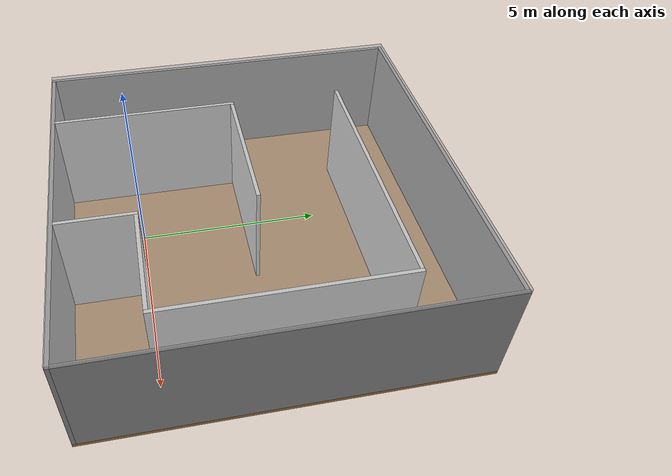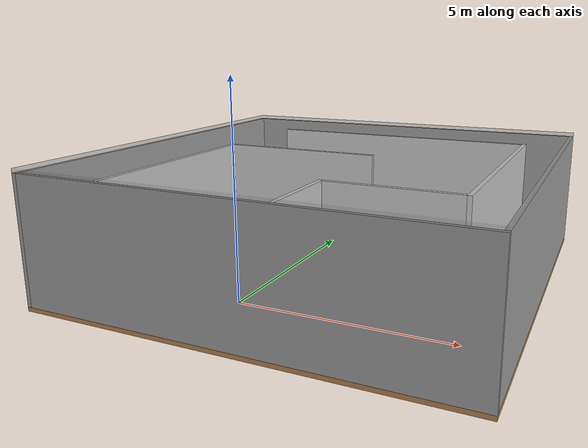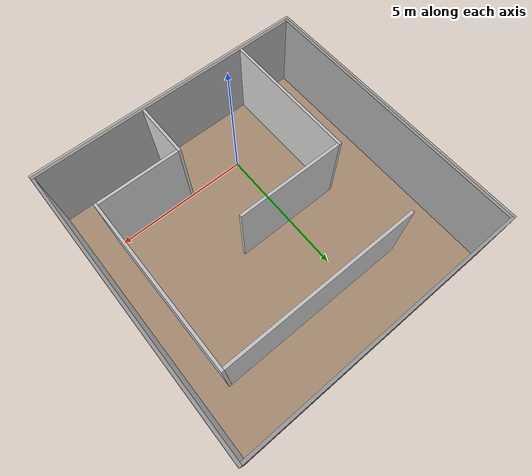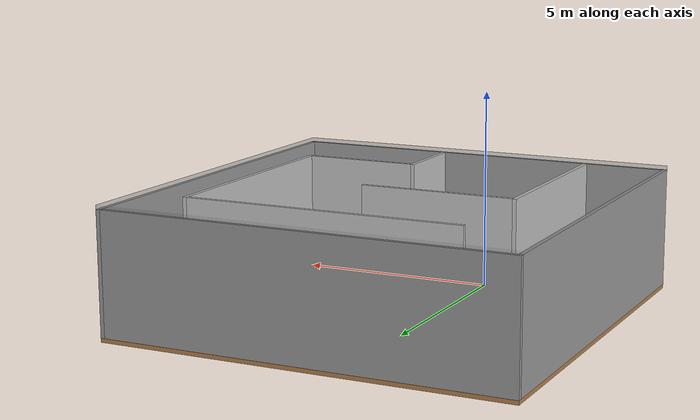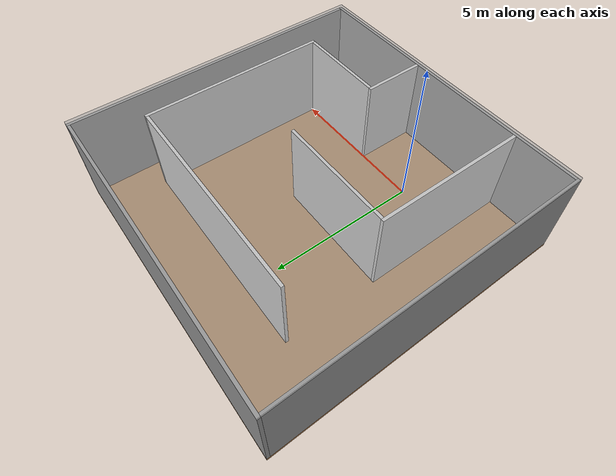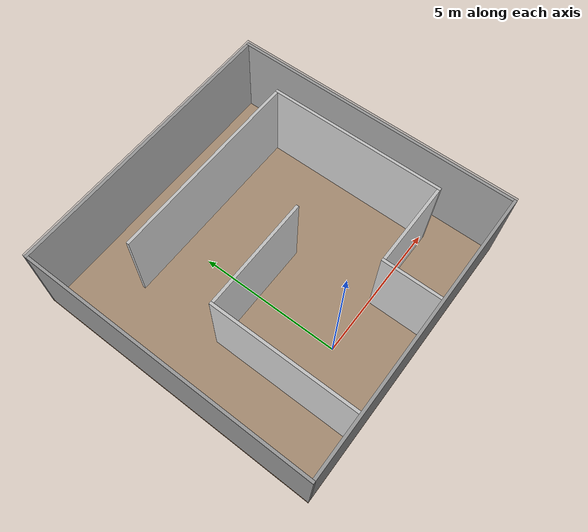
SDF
<?xml version="1.0" ?>
<sdf version="1.5">
  <world name="default">

    <include>
      <uri>model://sun</uri>
    </include>

    <physics name="default_physics" default="0" type="ode">
      <gravity>0 0 -9.8066</gravity>
      <ode>
        <solver>
          <type>quick</type>
          <iters>10</iters>
          <sor>1.3</sor>
          <use_dynamic_moi_rescaling>0</use_dynamic_moi_rescaling>
        </solver>
        <constraints>
          <cfm>0</cfm>
          <erp>0.2</erp>
          <contact_max_correcting_vel>100</contact_max_correcting_vel>
          <contact_surface_layer>0.001</contact_surface_layer>
        </constraints>
      </ode>
      <max_step_size>0.004</max_step_size>
      <real_time_factor>1</real_time_factor>
      <real_time_update_rate>250</real_time_update_rate>
      <magnetic_field>6.0e-6 2.3e-5 -4.2e-5</magnetic_field>
    </physics>

    <model name="box_1">
      <pose>1.0499999999999998 -2.05 1.5  0 0 0</pose>
      <static>true</static>
      <link name="link">
        <collision name="collision">
          <geometry>
            <box>
              <size>10.1 0.10000000000000009 3.0 </size>
            </box>
          </geometry>
        </collision>
        <visual name="visual">
          <geometry>
            <box>
              <size>10.1 0.10000000000000009 3.0 </size>
            </box>
          </geometry>
          <material>
            <script>
              <name>Gazebo/Grey</name>
              <uri>file://media/materials/scripts/gazebo.material</uri>
            </script>
          </material>
        </visual>
      </link>
    </model>

    <model name="box_2">
      <pose>6.05 3.05 1.5  0 0 0</pose>
      <static>true</static>
      <link name="link">
        <collision name="collision">
          <geometry>
            <box>
              <size>0.09999999999999964 10.1 3.0 </size>
            </box>
          </geometry>
        </collision>
        <visual name="visual">
          <geometry>
            <box>
              <size>0.09999999999999964 10.1 3.0 </size>
            </box>
          </geometry>
          <material>
            <script>
              <name>Gazebo/Grey</name>
              <uri>file://media/materials/scripts/gazebo.material</uri>
            </script>
          </material>
        </visual>
      </link>
    </model>

    <model name="box_3">
      <pose>0.9500000000000002 8.05 1.5  0 0 0</pose>
      <static>true</static>
      <link name="link">
        <collision name="collision">
          <geometry>
            <box>
              <size>10.1 0.09999999999999964 3.0 </size>
            </box>
          </geometry>
        </collision>
        <visual name="visual">
          <geometry>
            <box>
              <size>10.1 0.09999999999999964 3.0 </size>
            </box>
          </geometry>
          <material>
            <script>
              <name>Gazebo/Grey</name>
              <uri>file://media/materials/scripts/gazebo.material</uri>
            </script>
          </material>
        </visual>
      </link>
    </model>

    <model name="box_4">
      <pose>-4.05 2.95 1.5  0 0 0</pose>
      <static>true</static>
      <link name="link">
        <collision name="collision">
          <geometry>
            <box>
              <size>0.09999999999999964 10.1 3.0 </size>
            </box>
          </geometry>
        </collision>
        <visual name="visual">
          <geometry>
            <box>
              <size>0.09999999999999964 10.1 3.0 </size>
            </box>
          </geometry>
          <material>
            <script>
              <name>Gazebo/Grey</name>
              <uri>file://media/materials/scripts/gazebo.material</uri>
            </script>
          </material>
        </visual>
      </link>
    </model>

    <model name="box_5">
      <pose>1.0 3.0 -0.05  0 0 0</pose>
      <static>true</static>
      <link name="link">
        <collision name="collision">
          <geometry>
            <box>
              <size>10.2 10.2 0.1 </size>
            </box>
          </geometry>
        </collision>
        <visual name="visual">
          <geometry>
            <box>
              <size>10.2 10.2 0.1 </size>
            </box>
          </geometry>
          <material>
            <script>
              <name>Gazebo/WoodFloor</name>
              <uri>file://media/materials/scripts/gazebo.material</uri>
            </script>
          </material>
        </visual>
      </link>
    </model>

    <model name="box_6">
      <pose>1.0 3.0 3.05  0 0 0</pose>
      <static>true</static>
      <link name="link">
        <collision name="collision">
          <geometry>
            <box>
              <size>10.2 10.2 0.10000000000000009 </size>
            </box>
          </geometry>
        </collision>
        <visual name="visual">
          <geometry>
            <box>
              <size>10.2 10.2 0.10000000000000009 </size>
            </box>
          </geometry>
          <material>
            <script>
              <name>Gazebo/GreyTransparent</name>
              <uri>file://media/materials/scripts/gazebo.material</uri>
            </script>
          </material>
        </visual>
      </link>
    </model>

    <model name="box_7">
      <pose>-1.95 0.5 1.5  0 0 0</pose>
      <static>true</static>
      <link name="link">
        <collision name="collision">
          <geometry>
            <box>
              <size>0.10000000000000009 5.0 3.0 </size>
            </box>
          </geometry>
        </collision>
        <visual name="visual">
          <geometry>
            <box>
              <size>0.10000000000000009 5.0 3.0 </size>
            </box>
          </geometry>
          <material>
            <script>
              <name>Gazebo/White</name>
              <uri>file://media/materials/scripts/gazebo.material</uri>
            </script>
          </material>
        </visual>
      </link>
    </model>

    <model name="box_8">
      <pose>0.050000000000000044 2.95 1.5  0 0 0</pose>
      <static>true</static>
      <link name="link">
        <collision name="collision">
          <geometry>
            <box>
              <size>3.9 0.10000000000000009 3.0 </size>
            </box>
          </geometry>
        </collision>
        <visual name="visual">
          <geometry>
            <box>
              <size>3.9 0.10000000000000009 3.0 </size>
            </box>
          </geometry>
          <material>
            <script>
              <name>Gazebo/White</name>
              <uri>file://media/materials/scripts/gazebo.material</uri>
            </script>
          </material>
        </visual>
      </link>
    </model>

    <model name="box_9">
      <pose>2.05 -1.0 1.5  0 0 0</pose>
      <static>true</static>
      <link name="link">
        <collision name="collision">
          <geometry>
            <box>
              <size>0.10000000000000009 2.0 3.0 </size>
            </box>
          </geometry>
        </collision>
        <visual name="visual">
          <geometry>
            <box>
              <size>0.10000000000000009 2.0 3.0 </size>
            </box>
          </geometry>
          <material>
            <script>
              <name>Gazebo/White</name>
              <uri>file://media/materials/scripts/gazebo.material</uri>
            </script>
          </material>
        </visual>
      </link>
    </model>

    <model name="box_10">
      <pose>3.55 -0.05 1.5  0 0 0</pose>
      <static>true</static>
      <link name="link">
        <collision name="collision">
          <geometry>
            <box>
              <size>2.9 0.1 3.0 </size>
            </box>
          </geometry>
        </collision>
        <visual name="visual">
          <geometry>
            <box>
              <size>2.9 0.1 3.0 </size>
            </box>
          </geometry>
          <material>
            <script>
              <name>Gazebo/White</name>
              <uri>file://media/materials/scripts/gazebo.material</uri>
            </script>
          </material>
        </visual>
      </link>
    </model>

    <model name="box_11">
      <pose>5.05 3.0 1.5  0 0 0</pose>
      <static>true</static>
      <link name="link">
        <collision name="collision">
          <geometry>
            <box>
              <size>0.09999999999999964 6.199999999999999 3.0 </size>
            </box>
          </geometry>
        </collision>
        <visual name="visual">
          <geometry>
            <box>
              <size>0.09999999999999964 6.199999999999999 3.0 </size>
            </box>
          </geometry>
          <material>
            <script>
              <name>Gazebo/White</name>
              <uri>file://media/materials/scripts/gazebo.material</uri>
            </script>
          </material>
        </visual>
      </link>
    </model>

    <model name="box_12">
      <pose>1.5 6.05 1.5  0 0 0</pose>
      <static>true</static>
      <link name="link">
        <collision name="collision">
          <geometry>
            <box>
              <size>7.0 0.09999999999999964 3.0 </size>
            </box>
          </geometry>
        </collision>
        <visual name="visual">
          <geometry>
            <box>
              <size>7.0 0.09999999999999964 3.0 </size>
            </box>
          </geometry>
          <material>
            <script>
              <name>Gazebo/White</name>
              <uri>file://media/materials/scripts/gazebo.material</uri>
            </script>
          </material>
        </visual>
      </link>
    </model>

    <gui fullscreen='0'>
      <camera name='user_camera'>
        <pose frame=''>0.33747 -0.559924 15.7309 -3.6e-05 1.5698 1.56821</pose>
        <view_controller>orbit</view_controller>
        <projection_type>perspective</projection_type>
      </camera>
    </gui>
  </world>
</sdf>
